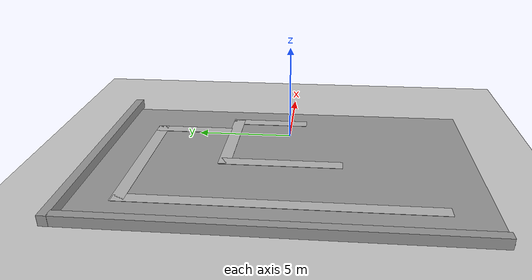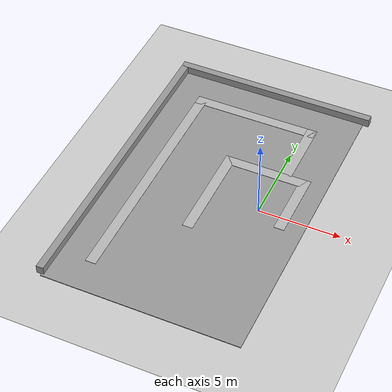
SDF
<sdf version="1.7">
 <world name="default">
  <model name="ground_plane">
   <static>1</static>
   <link name="link">
    <collision name="collision">
     <geometry><plane><normal>0 0 1</normal><size>100 100</size></plane></geometry>
     <surface>
      <contact><collide_bitmask>65535</collide_bitmask></contact>
      <friction><ode><mu>100</mu><mu2>50</mu2></ode></friction>
     </surface>
    </collision>
    <visual name="visual">
     <cast_shadows>0</cast_shadows>
     <geometry><plane><normal>0 0 1</normal><size>100 100</size></plane></geometry>
     <material>
      <script><uri>file://media/materials/scripts/gazebo.material</uri><name>Gazebo/Grey</name></script>
     </material>
    </visual>
   </link>
  </model>
  <model name="unit_box_wall">
   <link name="unit_box::link">
    <inertial>
     <mass>1</mass>
     <inertia>
      <ixx>0.166667</ixx>
      <ixy>0</ixy>
      <ixz>0</ixz>
      <iyy>0.166667</iyy>
      <iyz>0</iyz>
      <izz>0.166667</izz>
     </inertia>
    </inertial>
    <visual name="visual">
     <geometry><box><size>0.446113 18.5982 1</size></box></geometry>
     <material>
      <script><name>Gazebo/Grey</name><uri>file://media/materials/scripts/gazebo.material</uri></script>
      <shader type="pixel"/>
     </material>
    </visual>
    <collision name="collision">
     <geometry><box><size>0.446113 18.5982 1</size></box></geometry>
     <surface>
      <friction>
       <ode><mu>1</mu><mu2>1</mu2><fdir1>0 0 0</fdir1><slip1>0</slip1><slip2>0</slip2></ode>
       <torsional>
        <coefficient>1</coefficient>
        <patch_radius>0</patch_radius>
        <surface_radius>0</surface_radius>
        <use_patch_radius>1</use_patch_radius>
        <ode><slip>0</slip></ode>
       </torsional>
      </friction>
      <bounce><restitution_coefficient>0</restitution_coefficient><threshold>1e+06</threshold></bounce>
      <contact>
       <collide_without_contact>0</collide_without_contact>
       <collide_without_contact_bitmask>1</collide_without_contact_bitmask>
       <collide_bitmask>1</collide_bitmask>
       <ode>
        <soft_cfm>0</soft_cfm>
        <soft_erp>0.2</soft_erp>
        <kp>1e+13</kp>
        <kd>1</kd>
        <max_vel>0.01</max_vel>
        <min_depth>0</min_depth>
       </ode>
       <bullet>
        <split_impulse>1</split_impulse>
        <split_impulse_penetration_threshold>-0.01</split_impulse_penetration_threshold>
        <soft_cfm>0</soft_cfm>
        <soft_erp>0.2</soft_erp>
        <kp>1e+13</kp>
        <kd>1</kd>
       </bullet>
      </contact>
     </surface>
    </collision>
   </link>
   <static>1</static>
   <allow_auto_disable>0</allow_auto_disable>
   <pose>-9.02597 0.034785 0 0 -0 0</pose>
  </model>
  <model name="unit_box_wall_clone_0_clone">
   <link name="unit_box::link">
    <inertial>
     <mass>1</mass>
     <inertia>
      <ixx>0.166667</ixx>
      <ixy>0</ixy>
      <ixz>0</ixz>
      <iyy>0.166667</iyy>
      <iyz>0</iyz>
      <izz>0.166667</izz>
     </inertia>
    </inertial>
    <visual name="visual">
     <geometry><box><size>0.446113 12.605 1</size></box></geometry>
     <material>
      <script><name>Gazebo/Grey</name><uri>file://media/materials/scripts/gazebo.material</uri></script>
      <shader type="pixel"/>
     </material>
    </visual>
    <collision name="collision">
     <geometry><box><size>0.446113 12.605 1</size></box></geometry>
     <surface>
      <friction>
       <ode><mu>1</mu><mu2>1</mu2><fdir1>0 0 0</fdir1><slip1>0</slip1><slip2>0</slip2></ode>
       <torsional>
        <coefficient>1</coefficient>
        <patch_radius>0</patch_radius>
        <surface_radius>0</surface_radius>
        <use_patch_radius>1</use_patch_radius>
        <ode><slip>0</slip></ode>
       </torsional>
      </friction>
      <bounce><restitution_coefficient>0</restitution_coefficient><threshold>1e+06</threshold></bounce>
      <contact>
       <collide_without_contact>0</collide_without_contact>
       <collide_without_contact_bitmask>1</collide_without_contact_bitmask>
       <collide_bitmask>1</collide_bitmask>
       <ode>
        <soft_cfm>0</soft_cfm>
        <soft_erp>0.2</soft_erp>
        <kp>1e+13</kp>
        <kd>1</kd>
        <max_vel>0.01</max_vel>
        <min_depth>0</min_depth>
       </ode>
       <bullet>
        <split_impulse>1</split_impulse>
        <split_impulse_penetration_threshold>-0.01</split_impulse_penetration_threshold>
        <soft_cfm>0</soft_cfm>
        <soft_erp>0.2</soft_erp>
        <kp>1e+13</kp>
        <kd>1</kd>
       </bullet>
      </contact>
     </surface>
    </collision>
   </link>
   <static>1</static>
   <allow_auto_disable>0</allow_auto_disable>
   <pose>-2.94746 9.5173 0 0 0 -1.57124</pose>
  </model>
  <model name="unit_box_wall_0">
   <link name="unit_box::link">
    <inertial>
     <mass>1</mass>
     <inertia>
      <ixx>0.166667</ixx>
      <ixy>0</ixy>
      <ixz>0</ixz>
      <iyy>0.166667</iyy>
      <iyz>0</iyz>
      <izz>0.166667</izz>
     </inertia>
    </inertial>
    <visual name="visual">
     <geometry><box><size>11.9617 18.9194 0.225866</size></box></geometry>
     <material>
      <script><name>Gazebo/Grey</name><uri>file://media/materials/scripts/gazebo.material</uri></script>
      <shader type="pixel"/>
     </material>
    </visual>
    <collision name="collision">
     <geometry><box><size>11.9617 18.9194 0.225866</size></box></geometry>
     <surface>
      <friction>
       <ode><mu>1</mu><mu2>1</mu2><fdir1>0 0 0</fdir1><slip1>0</slip1><slip2>0</slip2></ode>
       <torsional>
        <coefficient>1</coefficient>
        <patch_radius>0</patch_radius>
        <surface_radius>0</surface_radius>
        <use_patch_radius>1</use_patch_radius>
        <ode><slip>0</slip></ode>
       </torsional>
      </friction>
      <bounce><restitution_coefficient>0</restitution_coefficient><threshold>1e+06</threshold></bounce>
      <contact>
       <collide_without_contact>0</collide_without_contact>
       <collide_without_contact_bitmask>1</collide_without_contact_bitmask>
       <collide_bitmask>1</collide_bitmask>
       <ode>
        <soft_cfm>0</soft_cfm>
        <soft_erp>0.2</soft_erp>
        <kp>1e+13</kp>
        <kd>1</kd>
        <max_vel>0.01</max_vel>
        <min_depth>0</min_depth>
       </ode>
       <bullet>
        <split_impulse>1</split_impulse>
        <split_impulse_penetration_threshold>-0.01</split_impulse_penetration_threshold>
        <soft_cfm>0</soft_cfm>
        <soft_erp>0.2</soft_erp>
        <kp>1e+13</kp>
        <kd>1</kd>
       </bullet>
      </contact>
     </surface>
    </collision>
   </link>
   <static>1</static>
   <allow_auto_disable>0</allow_auto_disable>
   <pose>-2.96882 0.051575 -0.095815 0 -0 0</pose>
  </model>
  <model name="wallx">
   <link name="unit_box::link">
    <inertial>
     <mass>0.360824</mass>
     <inertia>
      <ixx>1.11244</ixx>
      <ixy>0</ixy>
      <ixz>0</ixz>
      <iyy>0.0643516</iyy>
      <iyz>0</iyz>
      <izz>1.11666</izz>
     </inertia>
    </inertial>
    <visual name="visual">
     <geometry><box><size>0.63604 14.9462 1</size></box></geometry>
     <material>
      <script>
       <uri>model://wallx/materials/scripts</uri>
       <uri>model://wallx/materials/textures/</uri>
       <name>sofaMat/Diffuse</name>
      </script>
      <shader type="pixel"/>
     </material>
    </visual>
    <collision name="collision">
     <geometry><box><size>0.63604 14.9462 1</size></box></geometry>
     <surface>
      <friction>
       <ode><mu>1</mu><mu2>1</mu2><fdir1>0 0 0</fdir1><slip1>0</slip1><slip2>0</slip2></ode>
       <torsional>
        <coefficient>1</coefficient>
        <patch_radius>0</patch_radius>
        <surface_radius>0</surface_radius>
        <use_patch_radius>1</use_patch_radius>
        <ode><slip>0</slip></ode>
       </torsional>
      </friction>
      <bounce><restitution_coefficient>0</restitution_coefficient><threshold>1e+06</threshold></bounce>
      <contact>
       <collide_without_contact>0</collide_without_contact>
       <collide_without_contact_bitmask>1</collide_without_contact_bitmask>
       <collide_bitmask>1</collide_bitmask>
       <ode>
        <soft_cfm>0</soft_cfm>
        <soft_erp>0.2</soft_erp>
        <kp>1e+13</kp>
        <kd>1</kd>
        <max_vel>0.01</max_vel>
        <min_depth>0</min_depth>
       </ode>
       <bullet>
        <split_impulse>1</split_impulse>
        <split_impulse_penetration_threshold>-0.01</split_impulse_penetration_threshold>
        <soft_cfm>0</soft_cfm>
        <soft_erp>0.2</soft_erp>
        <kp>1e+13</kp>
        <kd>1</kd>
       </bullet>
      </contact>
     </surface>
    </collision>
   </link>
   <static>1</static>
   <allow_auto_disable>0</allow_auto_disable>
   <pose>-6.89945 0.027812 -0.470978 0 -0 0</pose>
  </model>
  <model name="wallx_clone">
   <link name="unit_box::link">
    <inertial>
     <mass>0.360824</mass>
     <inertia>
      <ixx>1.11244</ixx>
      <ixy>0</ixy>
      <ixz>0</ixz>
      <iyy>0.0643516</iyy>
      <iyz>0</iyz>
      <izz>1.11666</izz>
     </inertia>
    </inertial>
    <visual name="visual">
     <geometry><box><size>0.636041 7.85363 1</size></box></geometry>
     <material>
      <script>
       <uri>model://wallx/materials/scripts</uri>
       <uri>model://wallx/materials/textures/</uri>
       <name>sofaMat/Diffuse</name>
      </script>
      <shader type="pixel"/>
     </material>
    </visual>
    <collision name="collision">
     <geometry><box><size>0.636041 7.85363 1</size></box></geometry>
     <surface>
      <friction>
       <ode><mu>1</mu><mu2>1</mu2><fdir1>0 0 0</fdir1><slip1>0</slip1><slip2>0</slip2></ode>
       <torsional>
        <coefficient>1</coefficient>
        <patch_radius>0</patch_radius>
        <surface_radius>0</surface_radius>
        <use_patch_radius>1</use_patch_radius>
        <ode><slip>0</slip></ode>
       </torsional>
      </friction>
      <bounce><restitution_coefficient>0</restitution_coefficient><threshold>1e+06</threshold></bounce>
      <contact>
       <collide_without_contact>0</collide_without_contact>
       <collide_without_contact_bitmask>1</collide_without_contact_bitmask>
       <collide_bitmask>1</collide_bitmask>
       <ode>
        <soft_cfm>0</soft_cfm>
        <soft_erp>0.2</soft_erp>
        <kp>1e+13</kp>
        <kd>1</kd>
        <max_vel>0.01</max_vel>
        <min_depth>0</min_depth>
       </ode>
       <bullet>
        <split_impulse>1</split_impulse>
        <split_impulse_penetration_threshold>-0.01</split_impulse_penetration_threshold>
        <soft_cfm>0</soft_cfm>
        <soft_erp>0.2</soft_erp>
        <kp>1e+13</kp>
        <kd>1</kd>
       </bullet>
      </contact>
     </surface>
    </collision>
   </link>
   <static>1</static>
   <allow_auto_disable>0</allow_auto_disable>
   <pose>-3.28929 7.23337 -0.470978 0 0 -1.57156</pose>
  </model>
  <model name="wallx_clone_0">
   <link name="unit_box::link">
    <inertial>
     <mass>0.360824</mass>
     <inertia>
      <ixx>1.11244</ixx>
      <ixy>0</ixy>
      <ixz>0</ixz>
      <iyy>0.0643516</iyy>
      <iyz>0</iyz>
      <izz>1.11666</izz>
     </inertia>
    </inertial>
    <visual name="visual">
     <geometry><box><size>0.63604 4.22299 1</size></box></geometry>
     <material>
      <script>
       <uri>model://wallx/materials/scripts</uri>
       <uri>model://wallx/materials/textures/</uri>
       <name>sofaMat/Diffuse</name>
      </script>
      <shader type="pixel"/>
     </material>
    </visual>
    <collision name="collision">
     <geometry><box><size>0.63604 4.22299 1</size></box></geometry>
     <surface>
      <friction>
       <ode><mu>1</mu><mu2>1</mu2><fdir1>0 0 0</fdir1><slip1>0</slip1><slip2>0</slip2></ode>
       <torsional>
        <coefficient>1</coefficient>
        <patch_radius>0</patch_radius>
        <surface_radius>0</surface_radius>
        <use_patch_radius>1</use_patch_radius>
        <ode><slip>0</slip></ode>
       </torsional>
      </friction>
      <bounce><restitution_coefficient>0</restitution_coefficient><threshold>1e+06</threshold></bounce>
      <contact>
       <collide_without_contact>0</collide_without_contact>
       <collide_without_contact_bitmask>1</collide_without_contact_bitmask>
       <collide_bitmask>1</collide_bitmask>
       <ode>
        <soft_cfm>0</soft_cfm>
        <soft_erp>0.2</soft_erp>
        <kp>1e+13</kp>
        <kd>1</kd>
        <max_vel>0.01</max_vel>
        <min_depth>0</min_depth>
       </ode>
       <bullet>
        <split_impulse>1</split_impulse>
        <split_impulse_penetration_threshold>-0.01</split_impulse_penetration_threshold>
        <soft_cfm>0</soft_cfm>
        <soft_erp>0.2</soft_erp>
        <kp>1e+13</kp>
        <kd>1</kd>
       </bullet>
      </contact>
     </surface>
    </collision>
   </link>
   <static>1</static>
   <allow_auto_disable>0</allow_auto_disable>
   <pose>0.382564 5.43553 -0.470978 0 -0 0</pose>
  </model>
  <model name="wallx_clone_clone">
   <link name="unit_box::link">
    <inertial>
     <mass>0.360824</mass>
     <inertia>
      <ixx>1.11244</ixx>
      <ixy>0</ixy>
      <ixz>0</ixz>
      <iyy>0.0643516</iyy>
      <iyz>0</iyz>
      <izz>1.11666</izz>
     </inertia>
    </inertial>
    <visual name="visual">
     <geometry><box><size>0.636041 5.31246 1</size></box></geometry>
     <material>
      <script>
       <uri>model://wallx/materials/scripts</uri>
       <uri>model://wallx/materials/textures/</uri>
       <name>sofaMat/Diffuse</name>
      </script>
      <shader type="pixel"/>
     </material>
    </visual>
    <collision name="collision">
     <geometry><box><size>0.636041 5.31246 1</size></box></geometry>
     <surface>
      <friction>
       <ode><mu>1</mu><mu2>1</mu2><fdir1>0 0 0</fdir1><slip1>0</slip1><slip2>0</slip2></ode>
       <torsional>
        <coefficient>1</coefficient>
        <patch_radius>0</patch_radius>
        <surface_radius>0</surface_radius>
        <use_patch_radius>1</use_patch_radius>
        <ode><slip>0</slip></ode>
       </torsional>
      </friction>
      <bounce><restitution_coefficient>0</restitution_coefficient><threshold>1e+06</threshold></bounce>
      <contact>
       <collide_without_contact>0</collide_without_contact>
       <collide_without_contact_bitmask>1</collide_without_contact_bitmask>
       <collide_bitmask>1</collide_bitmask>
       <ode>
        <soft_cfm>0</soft_cfm>
        <soft_erp>0.2</soft_erp>
        <kp>1e+13</kp>
        <kd>1</kd>
        <max_vel>0.01</max_vel>
        <min_depth>0</min_depth>
       </ode>
       <bullet>
        <split_impulse>1</split_impulse>
        <split_impulse_penetration_threshold>-0.01</split_impulse_penetration_threshold>
        <soft_cfm>0</soft_cfm>
        <soft_erp>0.2</soft_erp>
        <kp>1e+13</kp>
        <kd>1</kd>
       </bullet>
      </contact>
     </surface>
    </collision>
   </link>
   <static>1</static>
   <allow_auto_disable>0</allow_auto_disable>
   <pose>-0.781029 3.06675 -0.470978 0 0 -1.57156</pose>
  </model>
  <model name="wallx_clone_0_clone">
   <link name="unit_box::link">
    <inertial>
     <mass>0.360824</mass>
     <inertia>
      <ixx>1.11244</ixx>
      <ixy>0</ixy>
      <ixz>0</ixz>
      <iyy>0.0643516</iyy>
      <iyz>0</iyz>
      <izz>1.11666</izz>
     </inertia>
    </inertial>
    <visual name="visual">
     <geometry><box><size>0.63604 6.20587 1</size></box></geometry>
     <material>
      <script>
       <uri>model://wallx/materials/scripts</uri>
       <uri>model://wallx/materials/textures/</uri>
       <name>sofaMat/Diffuse</name>
      </script>
      <shader type="pixel"/>
     </material>
    </visual>
    <collision name="collision">
     <geometry><box><size>0.63604 6.20587 1</size></box></geometry>
     <surface>
      <friction>
       <ode><mu>1</mu><mu2>1</mu2><fdir1>0 0 0</fdir1><slip1>0</slip1><slip2>0</slip2></ode>
       <torsional>
        <coefficient>1</coefficient>
        <patch_radius>0</patch_radius>
        <surface_radius>0</surface_radius>
        <use_patch_radius>1</use_patch_radius>
        <ode><slip>0</slip></ode>
       </torsional>
      </friction>
      <bounce><restitution_coefficient>0</restitution_coefficient><threshold>1e+06</threshold></bounce>
      <contact>
       <collide_without_contact>0</collide_without_contact>
       <collide_without_contact_bitmask>1</collide_without_contact_bitmask>
       <collide_bitmask>1</collide_bitmask>
       <ode>
        <soft_cfm>0</soft_cfm>
        <soft_erp>0.2</soft_erp>
        <kp>1e+13</kp>
        <kd>1</kd>
        <max_vel>0.01</max_vel>
        <min_depth>0</min_depth>
       </ode>
       <bullet>
        <split_impulse>1</split_impulse>
        <split_impulse_penetration_threshold>-0.01</split_impulse_penetration_threshold>
        <soft_cfm>0</soft_cfm>
        <soft_erp>0.2</soft_erp>
        <kp>1e+13</kp>
        <kd>1</kd>
       </bullet>
      </contact>
     </surface>
    </collision>
   </link>
   <static>1</static>
   <allow_auto_disable>0</allow_auto_disable>
   <pose>-3.17294 0.282367 -0.470978 0 -0 0</pose>
  </model>
  <model name="wallx_clone_0_clone_0">
   <link name="unit_box::link">
    <inertial>
     <mass>0.360824</mass>
     <inertia>
      <ixx>1.11244</ixx>
      <ixy>0</ixy>
      <ixz>0</ixz>
      <iyy>0.0643516</iyy>
      <iyz>0</iyz>
      <izz>1.11666</izz>
     </inertia>
    </inertial>
    <visual name="visual">
     <geometry><box><size>0.63604 4.223 1</size></box></geometry>
     <material>
      <script>
       <uri>model://wallx/materials/scripts</uri>
       <uri>model://wallx/materials/textures/</uri>
       <name>sofaMat/Diffuse</name>
      </script>
      <shader type="pixel"/>
     </material>
    </visual>
    <collision name="collision">
     <geometry><box><size>0.63604 4.223 1</size></box></geometry>
     <surface>
      <friction>
       <ode><mu>1</mu><mu2>1</mu2><fdir1>0 0 0</fdir1><slip1>0</slip1><slip2>0</slip2></ode>
       <torsional>
        <coefficient>1</coefficient>
        <patch_radius>0</patch_radius>
        <surface_radius>0</surface_radius>
        <use_patch_radius>1</use_patch_radius>
        <ode><slip>0</slip></ode>
       </torsional>
      </friction>
      <bounce><restitution_coefficient>0</restitution_coefficient><threshold>1e+06</threshold></bounce>
      <contact>
       <collide_without_contact>0</collide_without_contact>
       <collide_without_contact_bitmask>1</collide_without_contact_bitmask>
       <collide_bitmask>1</collide_bitmask>
       <ode>
        <soft_cfm>0</soft_cfm>
        <soft_erp>0.2</soft_erp>
        <kp>1e+13</kp>
        <kd>1</kd>
        <max_vel>0.01</max_vel>
        <min_depth>0</min_depth>
       </ode>
       <bullet>
        <split_impulse>1</split_impulse>
        <split_impulse_penetration_threshold>-0.01</split_impulse_penetration_threshold>
        <soft_cfm>0</soft_cfm>
        <soft_erp>0.2</soft_erp>
        <kp>1e+13</kp>
        <kd>1</kd>
       </bullet>
      </contact>
     </surface>
    </collision>
   </link>
   <static>1</static>
   <allow_auto_disable>0</allow_auto_disable>
   <pose>1.6061 1.27034 -0.470978 0 -0 0</pose>
  </model>
 </world>
</sdf>
